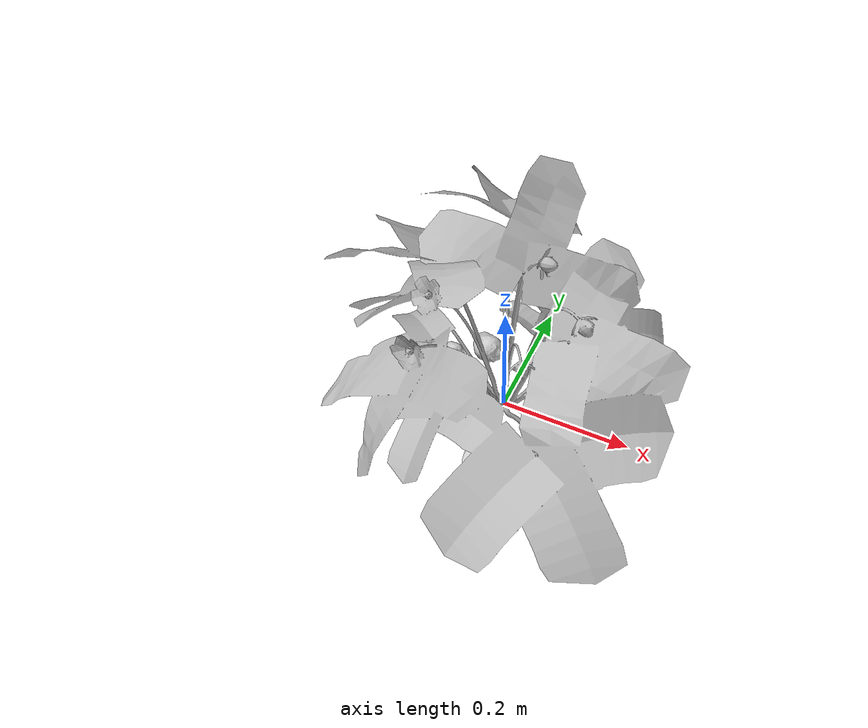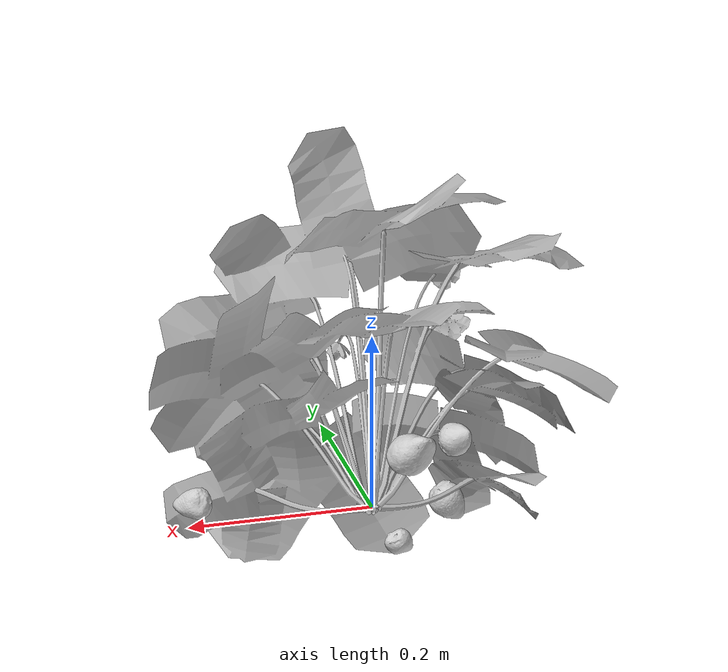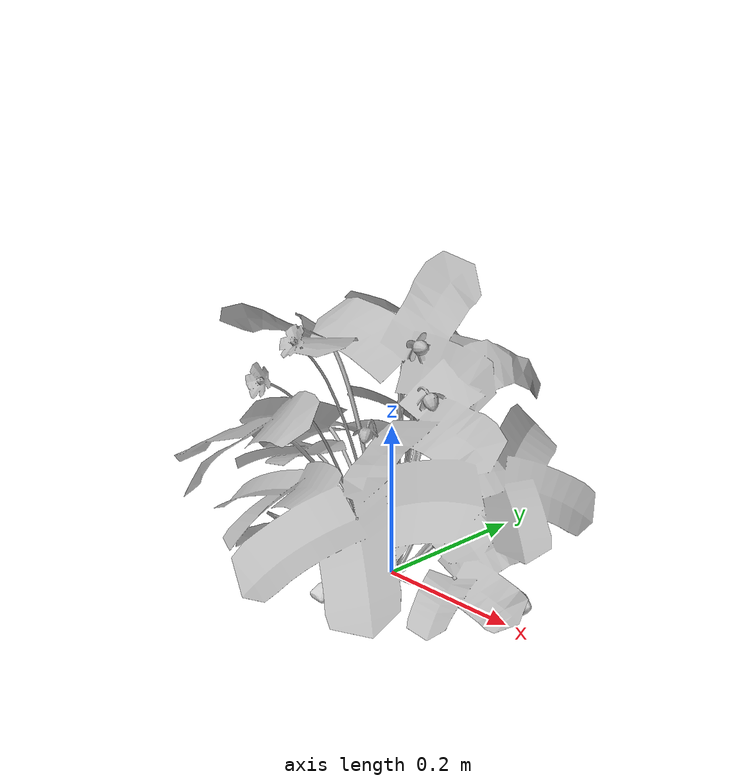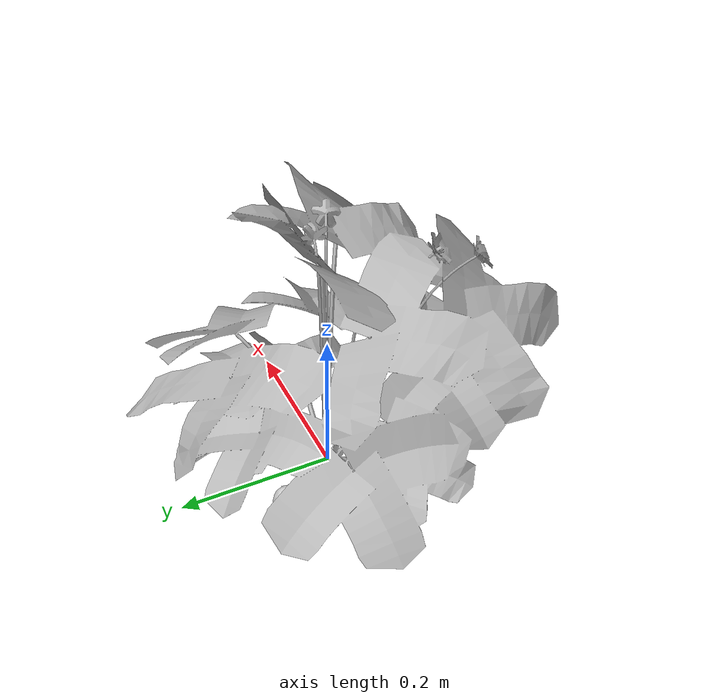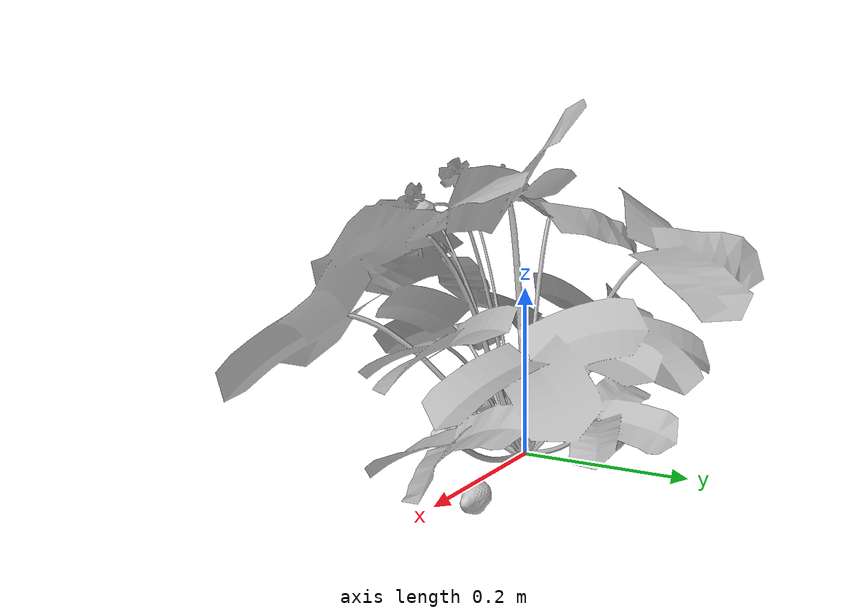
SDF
<?xml version='1.0'?>
<sdf version="1.5">
  <model name="grasp_strawberry_1">
    <include>
      <uri>model://AG06_5</uri>
      <pose>0 0 0 0 0 0</pose>
    </include>
    <include>
      <uri>model://strawberry_01</uri>
      <pose>0.182 0.037 0.01 0 1.53 0</pose>
    </include>
    <include>
      <uri>model://strawberry_02</uri>
      <pose>-0.064 0.080 0.017 -1.56 0 0.79</pose>
    </include>
    <include>
      <uri>model://strawberry_04</uri>
      <pose>0 -0.113 0.011 1.57 0 0</pose>
    </include>
    <include>
      <uri>model://strawberry_05</uri>
      <pose>-0.058 -0.093 0.044 2.34 0.36 -0.35</pose>
    </include>
    <include>
      <uri>model://strawberry_07</uri>
      <pose>-0.095 0.015 0.061 -1.71 0 0.93</pose>
    </include>
  </model>
</sdf>

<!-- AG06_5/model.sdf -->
<sdf version="1.5">
  <model name="AG06_5">
    <pose>0 0 0 0 0 0</pose>
    <static>true</static>
    <link name="link">
      <inertial>
        <mass>0.1</mass>
        <inertia>
          <ixx>0.000001397</ixx>
          <iyy>0.000001397</iyy>
          <izz>0.000000919</izz>
        </inertia>
      </inertial>
      <collision name="collision">
        <pose>0 0 0.015 0 0 0</pose>
        <geometry>
            <sphere>
                <radius>0.015</radius>
            </sphere>
        </geometry>
      </collision>
      <visual name="leaf1">
        <transparency>0</transparency>
        <geometry>
            <mesh>
                <uri>model://AG06_5/meshes/AG06_5.dae</uri>
                <submesh>
                  <name>leaf1</name>
                </submesh>
            </mesh>
        </geometry>
        <material>
          <script>
            <uri>model://AG06_5/materials/scripts</uri>
            <uri>model://AG06_5/materials/textures</uri>
            <name>AG06_5/leaf1</name>
          </script>
        </material>
        <cast_shadows>0</cast_shadows>
        <transparency>0</transparency>
      </visual>
      <visual name="leaf2">
        <transparency>0</transparency>
        <geometry>
            <mesh>
                <uri>model://AG06_5/meshes/AG06_5.dae</uri>
                <submesh>
                  <name>leaf2</name>
                </submesh>
            </mesh>
        </geometry>
        <material>
          <script>
            <uri>model://AG06_5/materials/scripts</uri>
            <uri>model://AG06_5/materials/textures</uri>
            <name>AG06_5/leaf2</name>
          </script>
        </material>
        <cast_shadows>0</cast_shadows>
        <transparency>0</transparency>
      </visual>
      <visual name="leaf3">
        <transparency>0</transparency>
        <geometry>
            <mesh>
                <uri>model://AG06_5/meshes/AG06_5.dae</uri>
                <submesh>
                  <name>leaf3</name>
                </submesh>
            </mesh>
        </geometry>
        <material>
          <script>
            <uri>model://AG06_5/materials/scripts</uri>
            <uri>model://AG06_5/materials/textures</uri>
            <name>AG06_5/leaf3</name>
          </script>
        </material>
        <cast_shadows>0</cast_shadows>
        <transparency>0</transparency>
      </visual>
      <visual name="branch1">
        <transparency>0</transparency>
        <geometry>
            <mesh>
                <uri>model://AG06_5/meshes/AG06_5.dae</uri>
                <submesh>
                  <name>branch1</name>
                </submesh>
            </mesh>
        </geometry>
        <material>
          <script>
            <uri>model://AG06_5/materials/scripts</uri>
            <uri>model://AG06_5/materials/textures</uri>
            <name>AG06_5/branch1</name>
          </script>
        </material>
        <cast_shadows>0</cast_shadows>
        <transparency>0</transparency>
      </visual>
      <visual name="flower1">
        <transparency>0</transparency>
        <geometry>
            <mesh>
                <uri>model://AG06_5/meshes/AG06_5.dae</uri>
                <submesh>
                  <name>flower1</name>
                </submesh>
            </mesh>
        </geometry>
        <material>
          <script>
            <uri>model://AG06_5/materials/scripts</uri>
            <uri>model://AG06_5/materials/textures</uri>
            <name>AG06_5/flower1</name>
          </script>
        </material>
        <cast_shadows>0</cast_shadows>
        <transparency>0</transparency>
      </visual>
      <visual name="fruit2">
        <transparency>0</transparency>
        <geometry>
            <mesh>
                <uri>model://AG06_5/meshes/AG06_5.dae</uri>
                <submesh>
                  <name>fruit2</name>
                </submesh>
            </mesh>
        </geometry>
        <material>
          <script>
            <uri>model://AG06_5/materials/scripts</uri>
            <uri>model://AG06_5/materials/textures</uri>
            <name>AG06_5/fruit2</name>
          </script>
        </material>
        <cast_shadows>0</cast_shadows>
        <transparency>0</transparency>
      </visual>
      <visual name="fruit3">
        <transparency>0</transparency>
        <geometry>
            <mesh>
                <uri>model://AG06_5/meshes/AG06_5.dae</uri>
                <submesh>
                  <name>fruit3</name>
                </submesh>
            </mesh>
        </geometry>
        <material>
          <script>
            <uri>model://AG06_5/materials/scripts</uri>
            <uri>model://AG06_5/materials/textures</uri>
            <name>AG06_5/fruit3</name>
          </script>
        </material>
        <cast_shadows>0</cast_shadows>
        <transparency>0</transparency>
      </visual>
      <visual name="fruit4">
        <transparency>0</transparency>
        <geometry>
            <mesh>
                <uri>model://AG06_5/meshes/AG06_5.dae</uri>
                <submesh>
                  <name>fruit4</name>
                </submesh>
            </mesh>
        </geometry>
        <material>
          <script>
            <uri>model://AG06_5/materials/scripts</uri>
            <uri>model://AG06_5/materials/textures</uri>
            <name>AG06_5/fruit4</name>
          </script>
        </material>
        <cast_shadows>0</cast_shadows>
        <transparency>0</transparency>
      </visual>
      <visual name="fruit6">
        <transparency>0</transparency>
        <geometry>
            <mesh>
                <uri>model://AG06_5/meshes/AG06_5.dae</uri>
                <submesh>
                  <name>fruit6</name>
                </submesh>
            </mesh>
        </geometry>
        <material>
          <script>
            <uri>model://AG06_5/materials/scripts</uri>
            <uri>model://AG06_5/materials/textures</uri>
            <name>AG06_5/fruit6</name>
          </script>
        </material>
        <cast_shadows>0</cast_shadows>
        <transparency>0</transparency>
      </visual>
    </link>
  </model>
</sdf>

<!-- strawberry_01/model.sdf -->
<sdf version="1.5">
  <model name="strawberry_01">
    <pose>0 0 0.02 3.14 0 0</pose>
    <static>false</static>
    <link name="link">
      <inertial>
        <mass>0.01</mass>
        <inertia>
          <ixx>0.000001397</ixx>
          <iyy>0.000001397</iyy>
          <izz>0.000000919</izz>
        </inertia>
      </inertial>
      <collision name="collision">
        <geometry>
          <mesh>
            <uri>model://strawberry_01/collision/01.dae</uri>
          </mesh>
        </geometry>
      </collision>
      <visual name="visual">
        <geometry>
          <mesh>
            <uri>model://strawberry_01/visual/01.dae</uri>
          </mesh>
        </geometry>
        <material>
          <script>
            <uri>model://strawberry_01/materials/scripts</uri>
            <uri>model://strawberry_01/materials/textures</uri>
            <name>strawberry_01</name>
          </script>
        </material>
      </visual>
    </link>
  </model>
</sdf>

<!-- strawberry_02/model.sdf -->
<sdf version="1.5">
  <model name="strawberry_02">
    <pose>0 0 0.02 3.14 0 0</pose>
    <static>false</static>
    <link name="link">
      <inertial>
        <mass>0.01</mass>
        <inertia>
          <ixx>0.000001397</ixx>
          <iyy>0.000001397</iyy>
          <izz>0.000000919</izz>
        </inertia>
      </inertial>
      <collision name="collision">
        <geometry>
          <mesh>
            <uri>model://strawberry_02/collision/02.dae</uri>
          </mesh>
        </geometry>
      </collision>
      <visual name="visual">
        <geometry>
          <mesh>
            <uri>model://strawberry_02/visual/02.dae</uri>
          </mesh>
        </geometry>
        <material>
          <script>
            <uri>model://strawberry_02/materials/scripts</uri>
            <uri>model://strawberry_02/materials/textures</uri>
            <name>strawberry_02</name>
          </script>
        </material>
      </visual>
    </link>
  </model>
</sdf>

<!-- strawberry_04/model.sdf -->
<sdf version="1.5">
  <model name="strawberry_04">
    <pose>0 0 0.02 3.14 0 0</pose>
    <static>false</static>
    <link name="link">
      <inertial>
        <mass>0.01</mass>
        <inertia>
          <ixx>0.000001397</ixx>
          <iyy>0.000001397</iyy>
          <izz>0.000000919</izz>
        </inertia>
      </inertial>
      <collision name="collision">
        <geometry>
          <mesh>
            <uri>model://strawberry_04/collision/04.dae</uri>
          </mesh>
        </geometry>
      </collision>
      <visual name="visual">
        <geometry>
          <mesh>
            <uri>model://strawberry_04/visual/04.dae</uri>
          </mesh>
        </geometry>
        <material>
          <script>
            <uri>model://strawberry_04/materials/scripts</uri>
            <uri>model://strawberry_04/materials/textures</uri>
            <name>strawberry_04</name>
          </script>
        </material>
      </visual>
    </link>
  </model>
</sdf>

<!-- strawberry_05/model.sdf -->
<sdf version="1.5">
  <model name="strawberry_05">
    <pose>0 0 0.02 3.14 0 0</pose>
    <static>false</static>
    <link name="link">
      <inertial>
        <mass>0.01</mass>
        <inertia>
          <ixx>0.000001397</ixx>
          <iyy>0.000001397</iyy>
          <izz>0.000000919</izz>
        </inertia>
      </inertial>
      <collision name="collision">
        <geometry>
          <mesh>
            <uri>model://strawberry_05/collision/05.dae</uri>
          </mesh>
        </geometry>
      </collision>
      <visual name="visual">
        <geometry>
          <mesh>
            <uri>model://strawberry_05/visual/05.dae</uri>
          </mesh>
        </geometry>
        <material>
          <script>
            <uri>model://strawberry_05/materials/scripts</uri>
            <uri>model://strawberry_05/materials/textures</uri>
            <name>strawberry_05</name>
          </script>
        </material>
      </visual>
    </link>
  </model>
</sdf>

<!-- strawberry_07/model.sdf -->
<sdf version="1.5">
  <model name="strawberry_07">
    <pose>0 0 0.02 3.14 0 0</pose>
    <static>false</static>
    <link name="link">
      <inertial>
        <mass>0.01</mass>
        <inertia>
          <ixx>0.000001397</ixx>
          <iyy>0.000001397</iyy>
          <izz>0.000000919</izz>
        </inertia>
      </inertial>
      <collision name="collision">
        <geometry>
          <mesh>
            <uri>model://strawberry_07/collision/07.dae</uri>
          </mesh>
        </geometry>
      </collision>
      <visual name="visual">
        <geometry>
          <mesh>
            <uri>model://strawberry_07/visual/07.dae</uri>
          </mesh>
        </geometry>
        <material>
          <script>
            <uri>model://strawberry_07/materials/scripts</uri>
            <uri>model://strawberry_07/materials/textures</uri>
            <name>strawberry_07</name>
          </script>
        </material>
      </visual>
    </link>
  </model>
</sdf>
